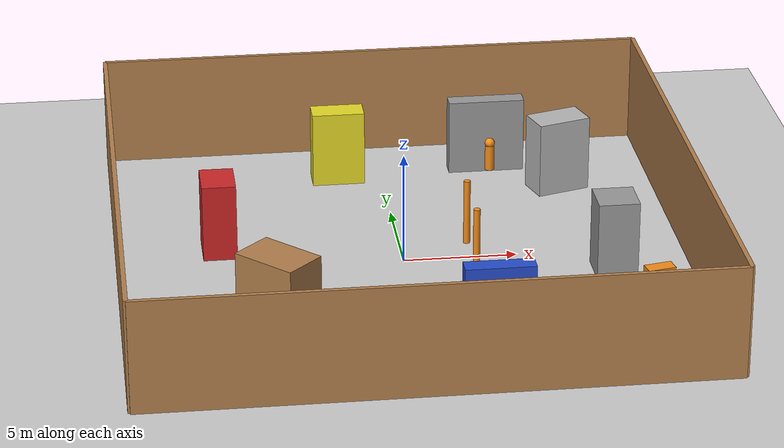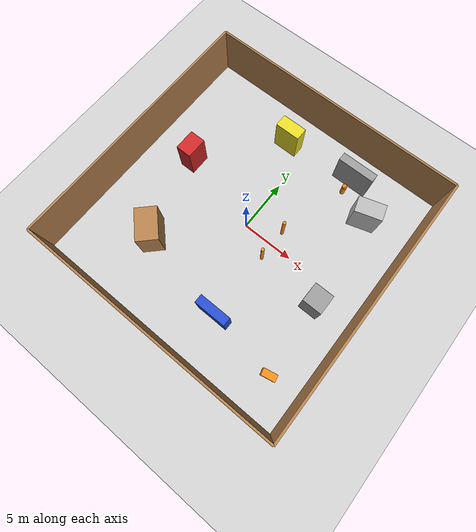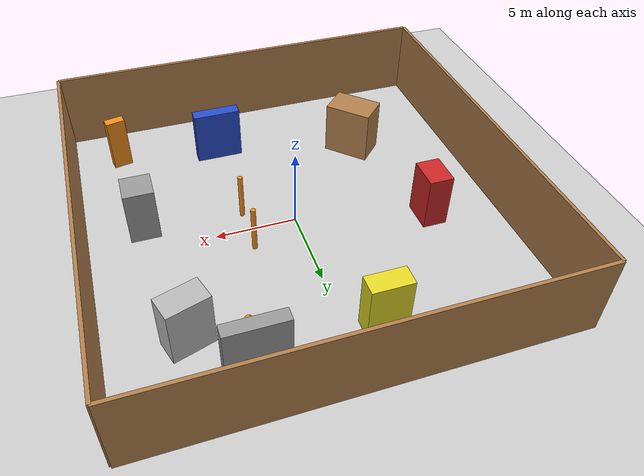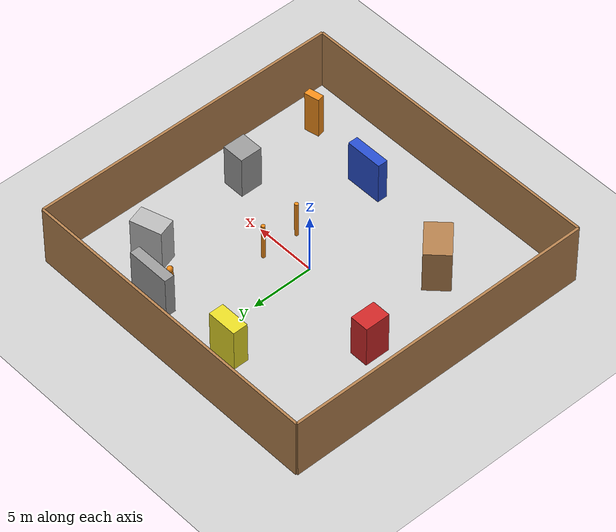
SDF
<sdf version="1.6">
 <world name="construction_site">
  <physics type="ode">
   <max_step_size>0.001</max_step_size>
   <real_time_factor>1</real_time_factor>
   <real_time_update_rate>1000</real_time_update_rate>
   <ode><solver><type>quick</type><iters>50</iters><sor>1.3</sor></solver></ode>
  </physics>
  <include><uri>model://sun</uri></include>
  <light name="ambient_light" type="directional">
   <cast_shadows>false</cast_shadows>
   <pose>0 0 20 0 0 0</pose>
   <diffuse>0.4 0.4 0.4 1</diffuse>
   <specular>0.1 0.1 0.1 1</specular>
   <direction>0.1 -0.1 -1.0</direction>
  </light>
  <include><uri>model://ground_plane</uri></include>
  <model name="fence_north">
   <static>true</static>
   <pose>0 12.5 2.5 0 0 0</pose>
   <link name="link">
    <collision name="collision"><geometry><box><size>25.0 0.2 5.0</size></box></geometry></collision>
    <visual name="visual">
     <geometry><box><size>25.0 0.2 5.0</size></box></geometry>
     <material>
      <script><uri>file://media/materials/scripts/gazebo.material</uri><name>Gazebo/WoodFloor</name></script>
     </material>
    </visual>
   </link>
  </model>
  <model name="fence_south">
   <static>true</static>
   <pose>0 -12.5 2.5 0 0 0</pose>
   <link name="link">
    <collision name="collision"><geometry><box><size>25.0 0.2 5.0</size></box></geometry></collision>
    <visual name="visual">
     <geometry><box><size>25.0 0.2 5.0</size></box></geometry>
     <material>
      <script><uri>file://media/materials/scripts/gazebo.material</uri><name>Gazebo/WoodFloor</name></script>
     </material>
    </visual>
   </link>
  </model>
  <model name="fence_east">
   <static>true</static>
   <pose>12.5 0 2.5 0 0 1.5708</pose>
   <link name="link">
    <collision name="collision"><geometry><box><size>25.0 0.2 5.0</size></box></geometry></collision>
    <visual name="visual">
     <geometry><box><size>25.0 0.2 5.0</size></box></geometry>
     <material>
      <script><uri>file://media/materials/scripts/gazebo.material</uri><name>Gazebo/WoodFloor</name></script>
     </material>
    </visual>
   </link>
  </model>
  <model name="fence_west">
   <static>true</static>
   <pose>-12.5 0 2.5 0 0 1.5708</pose>
   <link name="link">
    <collision name="collision"><geometry><box><size>25.0 0.2 5.0</size></box></geometry></collision>
    <visual name="visual">
     <geometry><box><size>25.0 0.2 5.0</size></box></geometry>
     <material>
      <script><uri>file://media/materials/scripts/gazebo.material</uri><name>Gazebo/WoodFloor</name></script>
     </material>
    </visual>
   </link>
  </model>
  <model name="material_pile_1">
   <static>true</static>
   <pose>8.0 7.0 1.75 0 0 0.3</pose>
   <link name="link">
    <collision name="collision"><geometry><box><size>2.5 1.5 3.5</size></box></geometry></collision>
    <visual name="visual">
     <geometry><box><size>2.5 1.5 3.5</size></box></geometry>
     <material>
      <script><uri>file://media/materials/scripts/gazebo.material</uri><name>Gazebo/Sand</name></script>
     </material>
    </visual>
   </link>
  </model>
  <model name="material_pile_2">
   <static>true</static>
   <pose>9.0 -2.0 1.75 0 0 0</pose>
   <link name="link">
    <collision name="collision"><geometry><box><size>1.8 1.8 3.5</size></box></geometry></collision>
    <visual name="visual">
     <geometry><box><size>1.8 1.8 3.5</size></box></geometry>
     <material>
      <script><uri>file://media/materials/scripts/gazebo.material</uri><name>Gazebo/Grey</name></script>
     </material>
    </visual>
   </link>
  </model>
  <model name="material_pile_3">
   <static>true</static>
   <pose>3.0 -8.0 1.75 0 0 0</pose>
   <link name="link">
    <collision name="collision"><geometry><box><size>3.0 0.8 3.5</size></box></geometry></collision>
    <visual name="visual">
     <geometry><box><size>3.0 0.8 3.5</size></box></geometry>
     <material>
      <script><uri>file://media/materials/scripts/gazebo.material</uri><name>Gazebo/Blue</name></script>
     </material>
    </visual>
   </link>
  </model>
  <model name="material_pile_4">
   <static>true</static>
   <pose>-6.0 -6.0 1.75 0 0 0.785</pose>
   <link name="link">
    <collision name="collision"><geometry><box><size>2.0 3.0 3.5</size></box></geometry></collision>
    <visual name="visual">
     <geometry><box><size>2.0 3.0 3.5</size></box></geometry>
     <material>
      <script><uri>file://media/materials/scripts/gazebo.material</uri><name>Gazebo/Wood</name></script>
     </material>
    </visual>
   </link>
  </model>
  <model name="material_pile_5">
   <static>true</static>
   <pose>-8.0 2.0 1.75 0 0 0</pose>
   <link name="link">
    <collision name="collision"><geometry><box><size>1.5 2.0 3.5</size></box></geometry></collision>
    <visual name="visual">
     <geometry><box><size>1.5 2.0 3.5</size></box></geometry>
     <material>
      <script><uri>file://media/materials/scripts/gazebo.material</uri><name>Gazebo/Red</name></script>
     </material>
    </visual>
   </link>
  </model>
  <model name="material_pile_6">
   <static>true</static>
   <pose>-2.0 9.0 1.75 0 0 0</pose>
   <link name="link">
    <collision name="collision"><geometry><box><size>2.4 1.2 3.5</size></box></geometry></collision>
    <visual name="visual">
     <geometry><box><size>2.4 1.2 3.5</size></box></geometry>
     <material>
      <script><uri>file://media/materials/scripts/gazebo.material</uri><name>Gazebo/Yellow</name></script>
     </material>
    </visual>
   </link>
  </model>
  <model name="material_pile_7">
   <static>true</static>
   <pose>5.0 9.5 1.75 0 0 1.5708</pose>
   <link name="link">
    <collision name="collision"><geometry><box><size>0.8 3.5 3.5</size></box></geometry></collision>
    <visual name="visual">
     <geometry><box><size>0.8 3.5 3.5</size></box></geometry>
     <material>
      <script><uri>file://media/materials/scripts/gazebo.material</uri><name>Gazebo/Grey</name></script>
     </material>
    </visual>
   </link>
  </model>
  <model name="material_pile_8">
   <static>true</static>
   <pose>9.5 -9.0 1.75 0 0 0.2</pose>
   <link name="link">
    <collision name="collision"><geometry><box><size>1.2 0.6 3.5</size></box></geometry></collision>
    <visual name="visual">
     <geometry><box><size>1.2 0.6 3.5</size></box></geometry>
     <material>
      <script><uri>file://media/materials/scripts/gazebo.material</uri><name>Gazebo/Orange</name></script>
     </material>
    </visual>
   </link>
  </model>
  <model name="cone_1">
   <static>true</static>
   <pose>3.0 1.5 1.5 0 0 0</pose>
   <link name="link">
    <collision name="collision">
     <geometry><cylinder><radius>0.15</radius><length>3.0</length></cylinder></geometry>
    </collision>
    <visual name="visual">
     <geometry><cylinder><radius>0.15</radius><length>3.0</length></cylinder></geometry>
     <material>
      <script><uri>file://media/materials/scripts/gazebo.material</uri><name>Gazebo/Orange</name></script>
     </material>
    </visual>
   </link>
  </model>
  <model name="cone_2">
   <static>true</static>
   <pose>3.0 -1.5 1.5 0 0 0</pose>
   <link name="link">
    <collision name="collision">
     <geometry><cylinder><radius>0.15</radius><length>3.0</length></cylinder></geometry>
    </collision>
    <visual name="visual">
     <geometry><cylinder><radius>0.15</radius><length>3.0</length></cylinder></geometry>
     <material>
      <script><uri>file://media/materials/scripts/gazebo.material</uri><name>Gazebo/Orange</name></script>
     </material>
    </visual>
   </link>
  </model>
  <model name="ped_collider_0">
   <static>false</static>
   <pose>5.0 8.0 2.0 0 0 0</pose>
   <link name="link">
    <inertial>
     <mass>1.0</mass>
     <inertia><ixx>0.1</ixx><ixy>0</ixy><ixz>0</ixz><iyy>0.1</iyy><iyz>0</iyz><izz>0.1</izz></inertia>
    </inertial>
    <collision name="collision">
     <geometry><cylinder><radius>0.3</radius><length>4.0</length></cylinder></geometry>
    </collision>
    <visual name="body_visual">
     <pose>0 0 -0.8 0 0 0</pose>
     <geometry><cylinder><radius>0.22</radius><length>1.2</length></cylinder></geometry>
     <material>
      <script><uri>file://media/materials/scripts/gazebo.material</uri><name>Gazebo/Orange</name></script>
     </material>
    </visual>
    <visual name="head_visual">
     <pose>0 0 -0.1 0 0 0</pose>
     <geometry><sphere><radius>0.23</radius></sphere></geometry>
     <material>
      <script><uri>file://media/materials/scripts/gazebo.material</uri><name>Gazebo/Orange</name></script>
     </material>
    </visual>
   </link>
  </model>
 </world>
</sdf>
